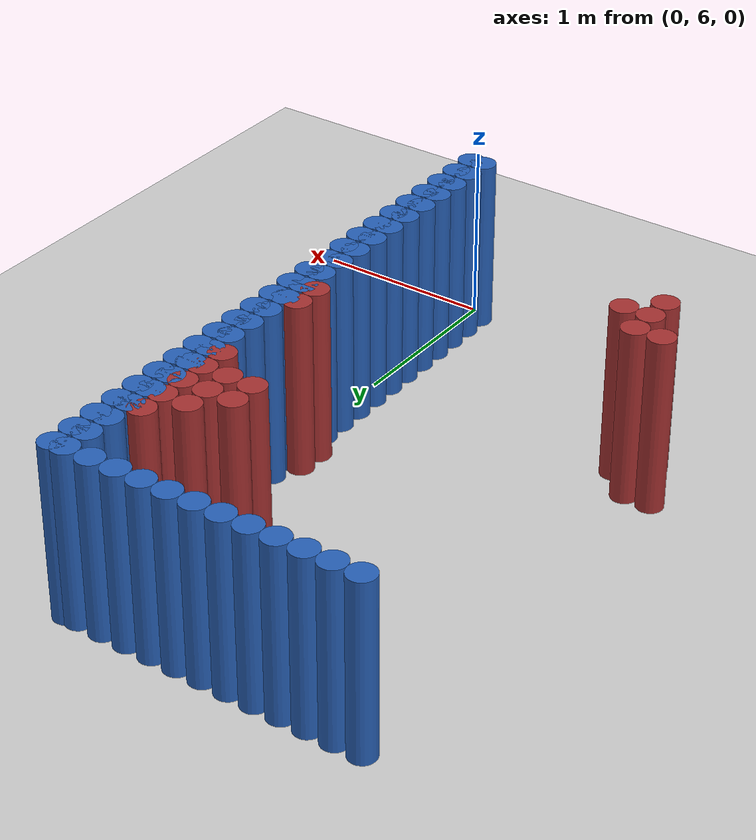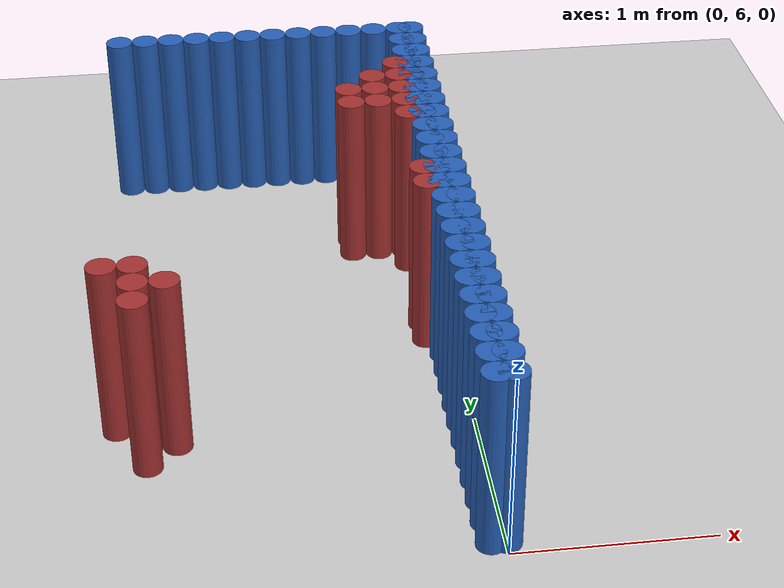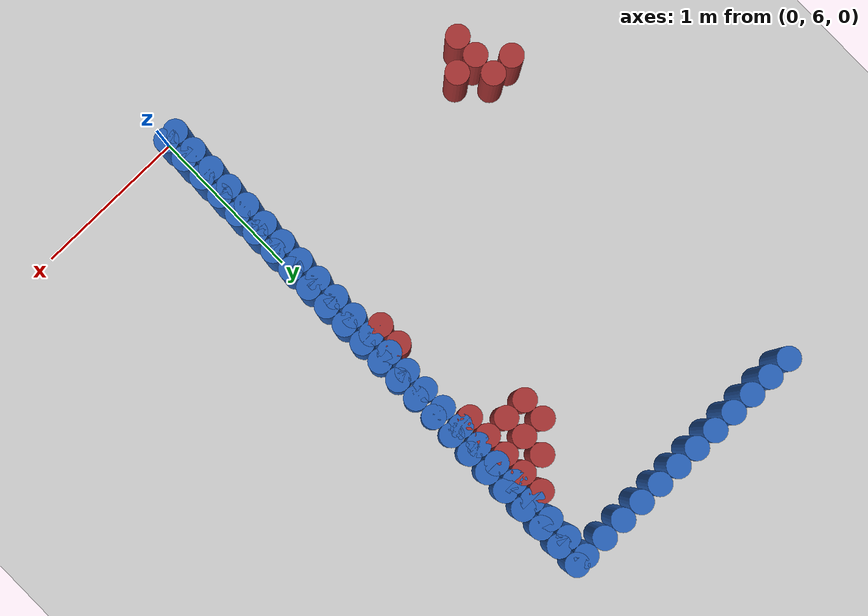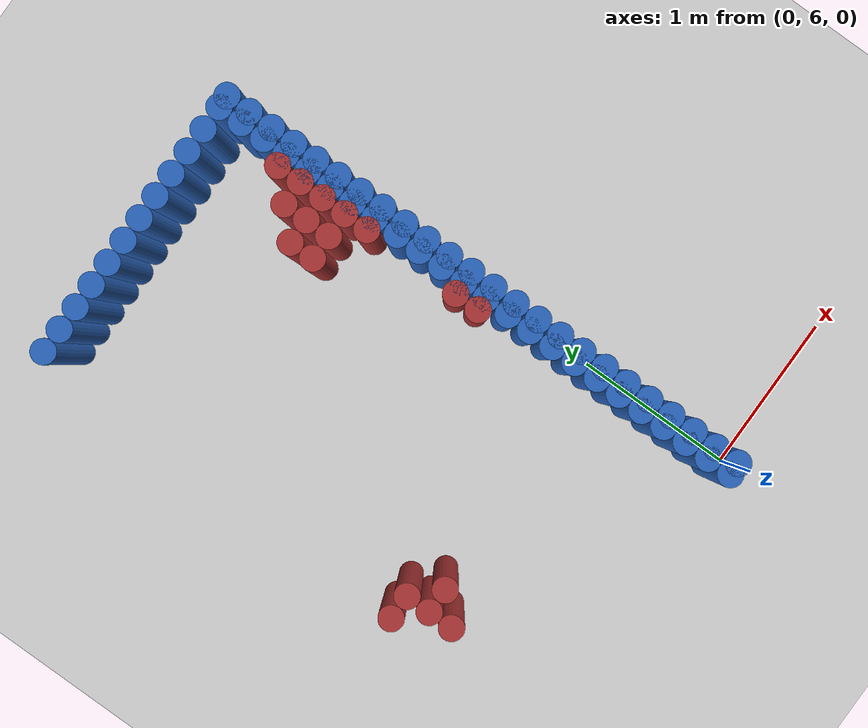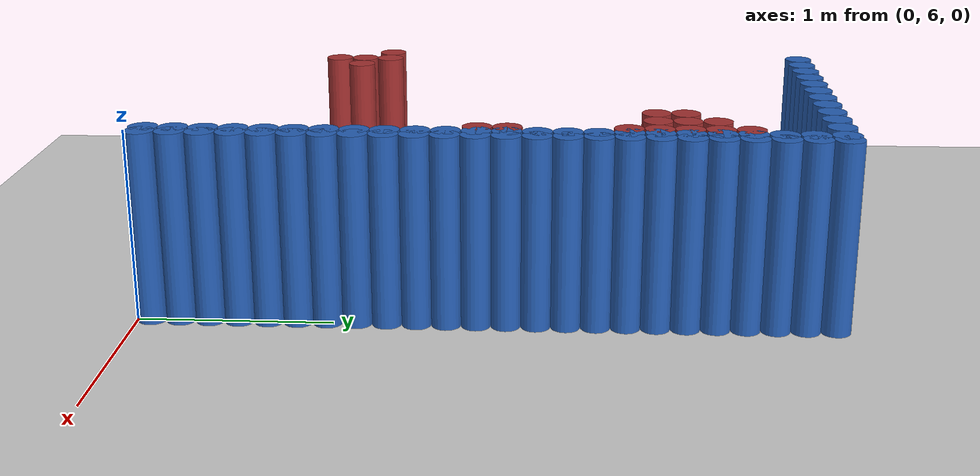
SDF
<sdf version="1.6">
 <world name="barn_world">
  <model name="ground_plane">
   <static>1</static>
   <link name="link">
    <collision name="collision">
     <geometry><plane><normal>0 0 1</normal><size>100 100</size></plane></geometry>
    </collision>
    <visual name="visual">
     <geometry><plane><normal>0 0 1</normal><size>100 100</size></plane></geometry>
     <material>
      <script><uri>file://media/materials/scripts/gazebo.material</uri><name>Gazebo/Grey</name></script>
     </material>
    </visual>
   </link>
  </model>
  <model name="unit_cylinder_168">
   <static>1</static>
   <pose>-1.8000 7.1250 0.5 0 0 0</pose>
   <link name="link">
    <collision name="collision">
     <geometry><cylinder><radius>0.075</radius><length>1</length></cylinder></geometry>
    </collision>
    <visual name="visual">
     <geometry><cylinder><radius>0.075</radius><length>1</length></cylinder></geometry>
     <material><ambient>0.648 0.192 0.192 1</ambient><diffuse>0.648 0.192 0.192 1</diffuse></material>
    </visual>
   </link>
  </model>
  <model name="unit_cylinder_169">
   <static>1</static>
   <pose>-1.6500 6.8250 0.5 0 0 0</pose>
   <link name="link">
    <collision name="collision">
     <geometry><cylinder><radius>0.075</radius><length>1</length></cylinder></geometry>
    </collision>
    <visual name="visual">
     <geometry><cylinder><radius>0.075</radius><length>1</length></cylinder></geometry>
     <material><ambient>0.648 0.192 0.192 1</ambient><diffuse>0.648 0.192 0.192 1</diffuse></material>
    </visual>
   </link>
  </model>
  <model name="unit_cylinder_170">
   <static>1</static>
   <pose>-1.6500 6.9750 0.5 0 0 0</pose>
   <link name="link">
    <collision name="collision">
     <geometry><cylinder><radius>0.075</radius><length>1</length></cylinder></geometry>
    </collision>
    <visual name="visual">
     <geometry><cylinder><radius>0.075</radius><length>1</length></cylinder></geometry>
     <material><ambient>0.648 0.192 0.192 1</ambient><diffuse>0.648 0.192 0.192 1</diffuse></material>
    </visual>
   </link>
  </model>
  <model name="unit_cylinder_171">
   <static>1</static>
   <pose>-1.6500 7.1250 0.5 0 0 0</pose>
   <link name="link">
    <collision name="collision">
     <geometry><cylinder><radius>0.075</radius><length>1</length></cylinder></geometry>
    </collision>
    <visual name="visual">
     <geometry><cylinder><radius>0.075</radius><length>1</length></cylinder></geometry>
     <material><ambient>0.648 0.192 0.192 1</ambient><diffuse>0.648 0.192 0.192 1</diffuse></material>
    </visual>
   </link>
  </model>
  <model name="unit_cylinder_172">
   <static>1</static>
   <pose>-1.5000 6.9750 0.5 0 0 0</pose>
   <link name="link">
    <collision name="collision">
     <geometry><cylinder><radius>0.075</radius><length>1</length></cylinder></geometry>
    </collision>
    <visual name="visual">
     <geometry><cylinder><radius>0.075</radius><length>1</length></cylinder></geometry>
     <material><ambient>0.648 0.192 0.192 1</ambient><diffuse>0.648 0.192 0.192 1</diffuse></material>
    </visual>
   </link>
  </model>
  <model name="unit_cylinder_173">
   <static>1</static>
   <pose>-0.4500 8.6250 0.5 0 0 0</pose>
   <link name="link">
    <collision name="collision">
     <geometry><cylinder><radius>0.075</radius><length>1</length></cylinder></geometry>
    </collision>
    <visual name="visual">
     <geometry><cylinder><radius>0.075</radius><length>1</length></cylinder></geometry>
     <material><ambient>0.648 0.192 0.192 1</ambient><diffuse>0.648 0.192 0.192 1</diffuse></material>
    </visual>
   </link>
  </model>
  <model name="unit_cylinder_174">
   <static>1</static>
   <pose>-0.4500 8.7750 0.5 0 0 0</pose>
   <link name="link">
    <collision name="collision">
     <geometry><cylinder><radius>0.075</radius><length>1</length></cylinder></geometry>
    </collision>
    <visual name="visual">
     <geometry><cylinder><radius>0.075</radius><length>1</length></cylinder></geometry>
     <material><ambient>0.648 0.192 0.192 1</ambient><diffuse>0.648 0.192 0.192 1</diffuse></material>
    </visual>
   </link>
  </model>
  <model name="unit_cylinder_175">
   <static>1</static>
   <pose>-0.3000 8.6250 0.5 0 0 0</pose>
   <link name="link">
    <collision name="collision">
     <geometry><cylinder><radius>0.075</radius><length>1</length></cylinder></geometry>
    </collision>
    <visual name="visual">
     <geometry><cylinder><radius>0.075</radius><length>1</length></cylinder></geometry>
     <material><ambient>0.648 0.192 0.192 1</ambient><diffuse>0.648 0.192 0.192 1</diffuse></material>
    </visual>
   </link>
  </model>
  <model name="unit_cylinder_176">
   <static>1</static>
   <pose>-0.3000 8.7750 0.5 0 0 0</pose>
   <link name="link">
    <collision name="collision">
     <geometry><cylinder><radius>0.075</radius><length>1</length></cylinder></geometry>
    </collision>
    <visual name="visual">
     <geometry><cylinder><radius>0.075</radius><length>1</length></cylinder></geometry>
     <material><ambient>0.648 0.192 0.192 1</ambient><diffuse>0.648 0.192 0.192 1</diffuse></material>
    </visual>
   </link>
  </model>
  <model name="unit_cylinder_177">
   <static>1</static>
   <pose>-0.3000 8.9250 0.5 0 0 0</pose>
   <link name="link">
    <collision name="collision">
     <geometry><cylinder><radius>0.075</radius><length>1</length></cylinder></geometry>
    </collision>
    <visual name="visual">
     <geometry><cylinder><radius>0.075</radius><length>1</length></cylinder></geometry>
     <material><ambient>0.648 0.192 0.192 1</ambient><diffuse>0.648 0.192 0.192 1</diffuse></material>
    </visual>
   </link>
  </model>
  <model name="unit_cylinder_181">
   <static>1</static>
   <pose>-0.1500 7.7250 0.5 0 0 0</pose>
   <link name="link">
    <collision name="collision">
     <geometry><cylinder><radius>0.075</radius><length>1</length></cylinder></geometry>
    </collision>
    <visual name="visual">
     <geometry><cylinder><radius>0.075</radius><length>1</length></cylinder></geometry>
     <material><ambient>0.648 0.192 0.192 1</ambient><diffuse>0.648 0.192 0.192 1</diffuse></material>
    </visual>
   </link>
  </model>
  <model name="unit_cylinder_182">
   <static>1</static>
   <pose>-0.1500 7.8750 0.5 0 0 0</pose>
   <link name="link">
    <collision name="collision">
     <geometry><cylinder><radius>0.075</radius><length>1</length></cylinder></geometry>
    </collision>
    <visual name="visual">
     <geometry><cylinder><radius>0.075</radius><length>1</length></cylinder></geometry>
     <material><ambient>0.648 0.192 0.192 1</ambient><diffuse>0.648 0.192 0.192 1</diffuse></material>
    </visual>
   </link>
  </model>
  <model name="unit_cylinder_183">
   <static>1</static>
   <pose>-0.1500 8.4750 0.5 0 0 0</pose>
   <link name="link">
    <collision name="collision">
     <geometry><cylinder><radius>0.075</radius><length>1</length></cylinder></geometry>
    </collision>
    <visual name="visual">
     <geometry><cylinder><radius>0.075</radius><length>1</length></cylinder></geometry>
     <material><ambient>0.648 0.192 0.192 1</ambient><diffuse>0.648 0.192 0.192 1</diffuse></material>
    </visual>
   </link>
  </model>
  <model name="unit_cylinder_184">
   <static>1</static>
   <pose>-0.1500 8.6250 0.5 0 0 0</pose>
   <link name="link">
    <collision name="collision">
     <geometry><cylinder><radius>0.075</radius><length>1</length></cylinder></geometry>
    </collision>
    <visual name="visual">
     <geometry><cylinder><radius>0.075</radius><length>1</length></cylinder></geometry>
     <material><ambient>0.648 0.192 0.192 1</ambient><diffuse>0.648 0.192 0.192 1</diffuse></material>
    </visual>
   </link>
  </model>
  <model name="unit_cylinder_185">
   <static>1</static>
   <pose>-0.1500 8.7750 0.5 0 0 0</pose>
   <link name="link">
    <collision name="collision">
     <geometry><cylinder><radius>0.075</radius><length>1</length></cylinder></geometry>
    </collision>
    <visual name="visual">
     <geometry><cylinder><radius>0.075</radius><length>1</length></cylinder></geometry>
     <material><ambient>0.648 0.192 0.192 1</ambient><diffuse>0.648 0.192 0.192 1</diffuse></material>
    </visual>
   </link>
  </model>
  <model name="unit_cylinder_186">
   <static>1</static>
   <pose>-0.1500 8.9250 0.5 0 0 0</pose>
   <link name="link">
    <collision name="collision">
     <geometry><cylinder><radius>0.075</radius><length>1</length></cylinder></geometry>
    </collision>
    <visual name="visual">
     <geometry><cylinder><radius>0.075</radius><length>1</length></cylinder></geometry>
     <material><ambient>0.648 0.192 0.192 1</ambient><diffuse>0.648 0.192 0.192 1</diffuse></material>
    </visual>
   </link>
  </model>
  <model name="unit_cylinder_187">
   <static>1</static>
   <pose>-0.1500 9.0750 0.5 0 0 0</pose>
   <link name="link">
    <collision name="collision">
     <geometry><cylinder><radius>0.075</radius><length>1</length></cylinder></geometry>
    </collision>
    <visual name="visual">
     <geometry><cylinder><radius>0.075</radius><length>1</length></cylinder></geometry>
     <material><ambient>0.648 0.192 0.192 1</ambient><diffuse>0.648 0.192 0.192 1</diffuse></material>
    </visual>
   </link>
  </model>
  <model name="unit_cylinder_194">
   <static>1</static>
   <pose>0.0000 6.0750 0.5 0 0 0</pose>
   <link name="link">
    <collision name="collision">
     <geometry><cylinder><radius>0.075</radius><length>1</length></cylinder></geometry>
    </collision>
    <visual name="visual">
     <geometry><cylinder><radius>0.075</radius><length>1</length></cylinder></geometry>
     <material><ambient>0.152 0.379 0.72 1</ambient><diffuse>0.152 0.379 0.72 1</diffuse></material>
    </visual>
   </link>
  </model>
  <model name="unit_cylinder_195">
   <static>1</static>
   <pose>0.0000 6.2250 0.5 0 0 0</pose>
   <link name="link">
    <collision name="collision">
     <geometry><cylinder><radius>0.075</radius><length>1</length></cylinder></geometry>
    </collision>
    <visual name="visual">
     <geometry><cylinder><radius>0.075</radius><length>1</length></cylinder></geometry>
     <material><ambient>0.152 0.379 0.72 1</ambient><diffuse>0.152 0.379 0.72 1</diffuse></material>
    </visual>
   </link>
  </model>
  <model name="unit_cylinder_196">
   <static>1</static>
   <pose>0.0000 6.3750 0.5 0 0 0</pose>
   <link name="link">
    <collision name="collision">
     <geometry><cylinder><radius>0.075</radius><length>1</length></cylinder></geometry>
    </collision>
    <visual name="visual">
     <geometry><cylinder><radius>0.075</radius><length>1</length></cylinder></geometry>
     <material><ambient>0.152 0.379 0.72 1</ambient><diffuse>0.152 0.379 0.72 1</diffuse></material>
    </visual>
   </link>
  </model>
  <model name="unit_cylinder_197">
   <static>1</static>
   <pose>0.0000 6.5250 0.5 0 0 0</pose>
   <link name="link">
    <collision name="collision">
     <geometry><cylinder><radius>0.075</radius><length>1</length></cylinder></geometry>
    </collision>
    <visual name="visual">
     <geometry><cylinder><radius>0.075</radius><length>1</length></cylinder></geometry>
     <material><ambient>0.152 0.379 0.72 1</ambient><diffuse>0.152 0.379 0.72 1</diffuse></material>
    </visual>
   </link>
  </model>
  <model name="unit_cylinder_198">
   <static>1</static>
   <pose>0.0000 6.6750 0.5 0 0 0</pose>
   <link name="link">
    <collision name="collision">
     <geometry><cylinder><radius>0.075</radius><length>1</length></cylinder></geometry>
    </collision>
    <visual name="visual">
     <geometry><cylinder><radius>0.075</radius><length>1</length></cylinder></geometry>
     <material><ambient>0.152 0.379 0.72 1</ambient><diffuse>0.152 0.379 0.72 1</diffuse></material>
    </visual>
   </link>
  </model>
  <model name="unit_cylinder_199">
   <static>1</static>
   <pose>0.0000 6.8250 0.5 0 0 0</pose>
   <link name="link">
    <collision name="collision">
     <geometry><cylinder><radius>0.075</radius><length>1</length></cylinder></geometry>
    </collision>
    <visual name="visual">
     <geometry><cylinder><radius>0.075</radius><length>1</length></cylinder></geometry>
     <material><ambient>0.152 0.379 0.72 1</ambient><diffuse>0.152 0.379 0.72 1</diffuse></material>
    </visual>
   </link>
  </model>
  <model name="unit_cylinder_200">
   <static>1</static>
   <pose>0.0000 6.9750 0.5 0 0 0</pose>
   <link name="link">
    <collision name="collision">
     <geometry><cylinder><radius>0.075</radius><length>1</length></cylinder></geometry>
    </collision>
    <visual name="visual">
     <geometry><cylinder><radius>0.075</radius><length>1</length></cylinder></geometry>
     <material><ambient>0.152 0.379 0.72 1</ambient><diffuse>0.152 0.379 0.72 1</diffuse></material>
    </visual>
   </link>
  </model>
  <model name="unit_cylinder_201">
   <static>1</static>
   <pose>0.0000 7.1250 0.5 0 0 0</pose>
   <link name="link">
    <collision name="collision">
     <geometry><cylinder><radius>0.075</radius><length>1</length></cylinder></geometry>
    </collision>
    <visual name="visual">
     <geometry><cylinder><radius>0.075</radius><length>1</length></cylinder></geometry>
     <material><ambient>0.152 0.379 0.72 1</ambient><diffuse>0.152 0.379 0.72 1</diffuse></material>
    </visual>
   </link>
  </model>
  <model name="unit_cylinder_202">
   <static>1</static>
   <pose>0.0000 7.2750 0.5 0 0 0</pose>
   <link name="link">
    <collision name="collision">
     <geometry><cylinder><radius>0.075</radius><length>1</length></cylinder></geometry>
    </collision>
    <visual name="visual">
     <geometry><cylinder><radius>0.075</radius><length>1</length></cylinder></geometry>
     <material><ambient>0.152 0.379 0.72 1</ambient><diffuse>0.152 0.379 0.72 1</diffuse></material>
    </visual>
   </link>
  </model>
  <model name="unit_cylinder_203">
   <static>1</static>
   <pose>0.0000 7.4250 0.5 0 0 0</pose>
   <link name="link">
    <collision name="collision">
     <geometry><cylinder><radius>0.075</radius><length>1</length></cylinder></geometry>
    </collision>
    <visual name="visual">
     <geometry><cylinder><radius>0.075</radius><length>1</length></cylinder></geometry>
     <material><ambient>0.152 0.379 0.72 1</ambient><diffuse>0.152 0.379 0.72 1</diffuse></material>
    </visual>
   </link>
  </model>
  <model name="unit_cylinder_204">
   <static>1</static>
   <pose>0.0000 7.5750 0.5 0 0 0</pose>
   <link name="link">
    <collision name="collision">
     <geometry><cylinder><radius>0.075</radius><length>1</length></cylinder></geometry>
    </collision>
    <visual name="visual">
     <geometry><cylinder><radius>0.075</radius><length>1</length></cylinder></geometry>
     <material><ambient>0.152 0.379 0.72 1</ambient><diffuse>0.152 0.379 0.72 1</diffuse></material>
    </visual>
   </link>
  </model>
  <model name="unit_cylinder_205">
   <static>1</static>
   <pose>0.0000 7.7250 0.5 0 0 0</pose>
   <link name="link">
    <collision name="collision">
     <geometry><cylinder><radius>0.075</radius><length>1</length></cylinder></geometry>
    </collision>
    <visual name="visual">
     <geometry><cylinder><radius>0.075</radius><length>1</length></cylinder></geometry>
     <material><ambient>0.152 0.379 0.72 1</ambient><diffuse>0.152 0.379 0.72 1</diffuse></material>
    </visual>
   </link>
  </model>
  <model name="unit_cylinder_206">
   <static>1</static>
   <pose>0.0000 7.8750 0.5 0 0 0</pose>
   <link name="link">
    <collision name="collision">
     <geometry><cylinder><radius>0.075</radius><length>1</length></cylinder></geometry>
    </collision>
    <visual name="visual">
     <geometry><cylinder><radius>0.075</radius><length>1</length></cylinder></geometry>
     <material><ambient>0.152 0.379 0.72 1</ambient><diffuse>0.152 0.379 0.72 1</diffuse></material>
    </visual>
   </link>
  </model>
  <model name="unit_cylinder_207">
   <static>1</static>
   <pose>0.0000 8.0250 0.5 0 0 0</pose>
   <link name="link">
    <collision name="collision">
     <geometry><cylinder><radius>0.075</radius><length>1</length></cylinder></geometry>
    </collision>
    <visual name="visual">
     <geometry><cylinder><radius>0.075</radius><length>1</length></cylinder></geometry>
     <material><ambient>0.152 0.379 0.72 1</ambient><diffuse>0.152 0.379 0.72 1</diffuse></material>
    </visual>
   </link>
  </model>
  <model name="unit_cylinder_208">
   <static>1</static>
   <pose>0.0000 8.1750 0.5 0 0 0</pose>
   <link name="link">
    <collision name="collision">
     <geometry><cylinder><radius>0.075</radius><length>1</length></cylinder></geometry>
    </collision>
    <visual name="visual">
     <geometry><cylinder><radius>0.075</radius><length>1</length></cylinder></geometry>
     <material><ambient>0.152 0.379 0.72 1</ambient><diffuse>0.152 0.379 0.72 1</diffuse></material>
    </visual>
   </link>
  </model>
  <model name="unit_cylinder_209">
   <static>1</static>
   <pose>0.0000 8.3250 0.5 0 0 0</pose>
   <link name="link">
    <collision name="collision">
     <geometry><cylinder><radius>0.075</radius><length>1</length></cylinder></geometry>
    </collision>
    <visual name="visual">
     <geometry><cylinder><radius>0.075</radius><length>1</length></cylinder></geometry>
     <material><ambient>0.152 0.379 0.72 1</ambient><diffuse>0.152 0.379 0.72 1</diffuse></material>
    </visual>
   </link>
  </model>
  <model name="unit_cylinder_210">
   <static>1</static>
   <pose>0.0000 8.4750 0.5 0 0 0</pose>
   <link name="link">
    <collision name="collision">
     <geometry><cylinder><radius>0.075</radius><length>1</length></cylinder></geometry>
    </collision>
    <visual name="visual">
     <geometry><cylinder><radius>0.075</radius><length>1</length></cylinder></geometry>
     <material><ambient>0.152 0.379 0.72 1</ambient><diffuse>0.152 0.379 0.72 1</diffuse></material>
    </visual>
   </link>
  </model>
  <model name="unit_cylinder_211">
   <static>1</static>
   <pose>0.0000 8.6250 0.5 0 0 0</pose>
   <link name="link">
    <collision name="collision">
     <geometry><cylinder><radius>0.075</radius><length>1</length></cylinder></geometry>
    </collision>
    <visual name="visual">
     <geometry><cylinder><radius>0.075</radius><length>1</length></cylinder></geometry>
     <material><ambient>0.152 0.379 0.72 1</ambient><diffuse>0.152 0.379 0.72 1</diffuse></material>
    </visual>
   </link>
  </model>
  <model name="unit_cylinder_212">
   <static>1</static>
   <pose>0.0000 8.7750 0.5 0 0 0</pose>
   <link name="link">
    <collision name="collision">
     <geometry><cylinder><radius>0.075</radius><length>1</length></cylinder></geometry>
    </collision>
    <visual name="visual">
     <geometry><cylinder><radius>0.075</radius><length>1</length></cylinder></geometry>
     <material><ambient>0.152 0.379 0.72 1</ambient><diffuse>0.152 0.379 0.72 1</diffuse></material>
    </visual>
   </link>
  </model>
  <model name="unit_cylinder_213">
   <static>1</static>
   <pose>0.0000 8.9250 0.5 0 0 0</pose>
   <link name="link">
    <collision name="collision">
     <geometry><cylinder><radius>0.075</radius><length>1</length></cylinder></geometry>
    </collision>
    <visual name="visual">
     <geometry><cylinder><radius>0.075</radius><length>1</length></cylinder></geometry>
     <material><ambient>0.152 0.379 0.72 1</ambient><diffuse>0.152 0.379 0.72 1</diffuse></material>
    </visual>
   </link>
  </model>
  <model name="unit_cylinder_214">
   <static>1</static>
   <pose>0.0000 9.0750 0.5 0 0 0</pose>
   <link name="link">
    <collision name="collision">
     <geometry><cylinder><radius>0.075</radius><length>1</length></cylinder></geometry>
    </collision>
    <visual name="visual">
     <geometry><cylinder><radius>0.075</radius><length>1</length></cylinder></geometry>
     <material><ambient>0.152 0.379 0.72 1</ambient><diffuse>0.152 0.379 0.72 1</diffuse></material>
    </visual>
   </link>
  </model>
  <model name="unit_cylinder_215">
   <static>1</static>
   <pose>0.0000 9.2250 0.5 0 0 0</pose>
   <link name="link">
    <collision name="collision">
     <geometry><cylinder><radius>0.075</radius><length>1</length></cylinder></geometry>
    </collision>
    <visual name="visual">
     <geometry><cylinder><radius>0.075</radius><length>1</length></cylinder></geometry>
     <material><ambient>0.152 0.379 0.72 1</ambient><diffuse>0.152 0.379 0.72 1</diffuse></material>
    </visual>
   </link>
  </model>
  <model name="unit_cylinder_216">
   <static>1</static>
   <pose>0.0000 9.3750 0.5 0 0 0</pose>
   <link name="link">
    <collision name="collision">
     <geometry><cylinder><radius>0.075</radius><length>1</length></cylinder></geometry>
    </collision>
    <visual name="visual">
     <geometry><cylinder><radius>0.075</radius><length>1</length></cylinder></geometry>
     <material><ambient>0.152 0.379 0.72 1</ambient><diffuse>0.152 0.379 0.72 1</diffuse></material>
    </visual>
   </link>
  </model>
  <model name="unit_cylinder_217">
   <static>1</static>
   <pose>0.0000 9.5250 0.5 0 0 0</pose>
   <link name="link">
    <collision name="collision">
     <geometry><cylinder><radius>0.075</radius><length>1</length></cylinder></geometry>
    </collision>
    <visual name="visual">
     <geometry><cylinder><radius>0.075</radius><length>1</length></cylinder></geometry>
     <material><ambient>0.152 0.379 0.72 1</ambient><diffuse>0.152 0.379 0.72 1</diffuse></material>
    </visual>
   </link>
  </model>
  <model name="unit_cylinder_218">
   <static>1</static>
   <pose>-0.0750 9.5250 0.5 0 0 0</pose>
   <link name="link">
    <collision name="collision">
     <geometry><cylinder><radius>0.075</radius><length>1</length></cylinder></geometry>
    </collision>
    <visual name="visual">
     <geometry><cylinder><radius>0.075</radius><length>1</length></cylinder></geometry>
     <material><ambient>0.152 0.379 0.72 1</ambient><diffuse>0.152 0.379 0.72 1</diffuse></material>
    </visual>
   </link>
  </model>
  <model name="unit_cylinder_219">
   <static>1</static>
   <pose>-0.2250 9.5250 0.5 0 0 0</pose>
   <link name="link">
    <collision name="collision">
     <geometry><cylinder><radius>0.075</radius><length>1</length></cylinder></geometry>
    </collision>
    <visual name="visual">
     <geometry><cylinder><radius>0.075</radius><length>1</length></cylinder></geometry>
     <material><ambient>0.152 0.379 0.72 1</ambient><diffuse>0.152 0.379 0.72 1</diffuse></material>
    </visual>
   </link>
  </model>
  <model name="unit_cylinder_220">
   <static>1</static>
   <pose>-0.3750 9.5250 0.5 0 0 0</pose>
   <link name="link">
    <collision name="collision">
     <geometry><cylinder><radius>0.075</radius><length>1</length></cylinder></geometry>
    </collision>
    <visual name="visual">
     <geometry><cylinder><radius>0.075</radius><length>1</length></cylinder></geometry>
     <material><ambient>0.152 0.379 0.72 1</ambient><diffuse>0.152 0.379 0.72 1</diffuse></material>
    </visual>
   </link>
  </model>
  <model name="unit_cylinder_221">
   <static>1</static>
   <pose>-0.5250 9.5250 0.5 0 0 0</pose>
   <link name="link">
    <collision name="collision">
     <geometry><cylinder><radius>0.075</radius><length>1</length></cylinder></geometry>
    </collision>
    <visual name="visual">
     <geometry><cylinder><radius>0.075</radius><length>1</length></cylinder></geometry>
     <material><ambient>0.152 0.379 0.72 1</ambient><diffuse>0.152 0.379 0.72 1</diffuse></material>
    </visual>
   </link>
  </model>
  <model name="unit_cylinder_222">
   <static>1</static>
   <pose>-0.6750 9.5250 0.5 0 0 0</pose>
   <link name="link">
    <collision name="collision">
     <geometry><cylinder><radius>0.075</radius><length>1</length></cylinder></geometry>
    </collision>
    <visual name="visual">
     <geometry><cylinder><radius>0.075</radius><length>1</length></cylinder></geometry>
     <material><ambient>0.152 0.379 0.72 1</ambient><diffuse>0.152 0.379 0.72 1</diffuse></material>
    </visual>
   </link>
  </model>
  <model name="unit_cylinder_223">
   <static>1</static>
   <pose>-0.8250 9.5250 0.5 0 0 0</pose>
   <link name="link">
    <collision name="collision">
     <geometry><cylinder><radius>0.075</radius><length>1</length></cylinder></geometry>
    </collision>
    <visual name="visual">
     <geometry><cylinder><radius>0.075</radius><length>1</length></cylinder></geometry>
     <material><ambient>0.152 0.379 0.72 1</ambient><diffuse>0.152 0.379 0.72 1</diffuse></material>
    </visual>
   </link>
  </model>
  <model name="unit_cylinder_224">
   <static>1</static>
   <pose>-0.9750 9.5250 0.5 0 0 0</pose>
   <link name="link">
    <collision name="collision">
     <geometry><cylinder><radius>0.075</radius><length>1</length></cylinder></geometry>
    </collision>
    <visual name="visual">
     <geometry><cylinder><radius>0.075</radius><length>1</length></cylinder></geometry>
     <material><ambient>0.152 0.379 0.72 1</ambient><diffuse>0.152 0.379 0.72 1</diffuse></material>
    </visual>
   </link>
  </model>
  <model name="unit_cylinder_225">
   <static>1</static>
   <pose>-1.1250 9.5250 0.5 0 0 0</pose>
   <link name="link">
    <collision name="collision">
     <geometry><cylinder><radius>0.075</radius><length>1</length></cylinder></geometry>
    </collision>
    <visual name="visual">
     <geometry><cylinder><radius>0.075</radius><length>1</length></cylinder></geometry>
     <material><ambient>0.152 0.379 0.72 1</ambient><diffuse>0.152 0.379 0.72 1</diffuse></material>
    </visual>
   </link>
  </model>
  <model name="unit_cylinder_226">
   <static>1</static>
   <pose>-1.2750 9.5250 0.5 0 0 0</pose>
   <link name="link">
    <collision name="collision">
     <geometry><cylinder><radius>0.075</radius><length>1</length></cylinder></geometry>
    </collision>
    <visual name="visual">
     <geometry><cylinder><radius>0.075</radius><length>1</length></cylinder></geometry>
     <material><ambient>0.152 0.379 0.72 1</ambient><diffuse>0.152 0.379 0.72 1</diffuse></material>
    </visual>
   </link>
  </model>
  <model name="unit_cylinder_227">
   <static>1</static>
   <pose>-1.4250 9.5250 0.5 0 0 0</pose>
   <link name="link">
    <collision name="collision">
     <geometry><cylinder><radius>0.075</radius><length>1</length></cylinder></geometry>
    </collision>
    <visual name="visual">
     <geometry><cylinder><radius>0.075</radius><length>1</length></cylinder></geometry>
     <material><ambient>0.152 0.379 0.72 1</ambient><diffuse>0.152 0.379 0.72 1</diffuse></material>
    </visual>
   </link>
  </model>
  <model name="unit_cylinder_228">
   <static>1</static>
   <pose>-1.5750 9.5250 0.5 0 0 0</pose>
   <link name="link">
    <collision name="collision">
     <geometry><cylinder><radius>0.075</radius><length>1</length></cylinder></geometry>
    </collision>
    <visual name="visual">
     <geometry><cylinder><radius>0.075</radius><length>1</length></cylinder></geometry>
     <material><ambient>0.152 0.379 0.72 1</ambient><diffuse>0.152 0.379 0.72 1</diffuse></material>
    </visual>
   </link>
  </model>
  <model name="unit_cylinder_229">
   <static>1</static>
   <pose>-1.7250 9.5250 0.5 0 0 0</pose>
   <link name="link">
    <collision name="collision">
     <geometry><cylinder><radius>0.075</radius><length>1</length></cylinder></geometry>
    </collision>
    <visual name="visual">
     <geometry><cylinder><radius>0.075</radius><length>1</length></cylinder></geometry>
     <material><ambient>0.152 0.379 0.72 1</ambient><diffuse>0.152 0.379 0.72 1</diffuse></material>
    </visual>
   </link>
  </model>
  <model name="unit_cylinder_260">
   <static>1</static>
   <pose>-0.0750 6.0750 0.5 0 0 0</pose>
   <link name="link">
    <collision name="collision">
     <geometry><cylinder><radius>0.075</radius><length>1</length></cylinder></geometry>
    </collision>
    <visual name="visual">
     <geometry><cylinder><radius>0.075</radius><length>1</length></cylinder></geometry>
     <material><ambient>0.152 0.379 0.72 1</ambient><diffuse>0.152 0.379 0.72 1</diffuse></material>
    </visual>
   </link>
  </model>
  <model name="unit_cylinder_262">
   <static>1</static>
   <pose>-0.0750 6.2250 0.5 0 0 0</pose>
   <link name="link">
    <collision name="collision">
     <geometry><cylinder><radius>0.075</radius><length>1</length></cylinder></geometry>
    </collision>
    <visual name="visual">
     <geometry><cylinder><radius>0.075</radius><length>1</length></cylinder></geometry>
     <material><ambient>0.152 0.379 0.72 1</ambient><diffuse>0.152 0.379 0.72 1</diffuse></material>
    </visual>
   </link>
  </model>
  <model name="unit_cylinder_264">
   <static>1</static>
   <pose>-0.0750 6.3750 0.5 0 0 0</pose>
   <link name="link">
    <collision name="collision">
     <geometry><cylinder><radius>0.075</radius><length>1</length></cylinder></geometry>
    </collision>
    <visual name="visual">
     <geometry><cylinder><radius>0.075</radius><length>1</length></cylinder></geometry>
     <material><ambient>0.152 0.379 0.72 1</ambient><diffuse>0.152 0.379 0.72 1</diffuse></material>
    </visual>
   </link>
  </model>
  <model name="unit_cylinder_266">
   <static>1</static>
   <pose>-0.0750 6.5250 0.5 0 0 0</pose>
   <link name="link">
    <collision name="collision">
     <geometry><cylinder><radius>0.075</radius><length>1</length></cylinder></geometry>
    </collision>
    <visual name="visual">
     <geometry><cylinder><radius>0.075</radius><length>1</length></cylinder></geometry>
     <material><ambient>0.152 0.379 0.72 1</ambient><diffuse>0.152 0.379 0.72 1</diffuse></material>
    </visual>
   </link>
  </model>
  <model name="unit_cylinder_268">
   <static>1</static>
   <pose>-0.0750 6.6750 0.5 0 0 0</pose>
   <link name="link">
    <collision name="collision">
     <geometry><cylinder><radius>0.075</radius><length>1</length></cylinder></geometry>
    </collision>
    <visual name="visual">
     <geometry><cylinder><radius>0.075</radius><length>1</length></cylinder></geometry>
     <material><ambient>0.152 0.379 0.72 1</ambient><diffuse>0.152 0.379 0.72 1</diffuse></material>
    </visual>
   </link>
  </model>
  <model name="unit_cylinder_270">
   <static>1</static>
   <pose>-0.0750 6.8250 0.5 0 0 0</pose>
   <link name="link">
    <collision name="collision">
     <geometry><cylinder><radius>0.075</radius><length>1</length></cylinder></geometry>
    </collision>
    <visual name="visual">
     <geometry><cylinder><radius>0.075</radius><length>1</length></cylinder></geometry>
     <material><ambient>0.152 0.379 0.72 1</ambient><diffuse>0.152 0.379 0.72 1</diffuse></material>
    </visual>
   </link>
  </model>
  <model name="unit_cylinder_272">
   <static>1</static>
   <pose>-0.0750 6.9750 0.5 0 0 0</pose>
   <link name="link">
    <collision name="collision">
     <geometry><cylinder><radius>0.075</radius><length>1</length></cylinder></geometry>
    </collision>
    <visual name="visual">
     <geometry><cylinder><radius>0.075</radius><length>1</length></cylinder></geometry>
     <material><ambient>0.152 0.379 0.72 1</ambient><diffuse>0.152 0.379 0.72 1</diffuse></material>
    </visual>
   </link>
  </model>
  <model name="unit_cylinder_274">
   <static>1</static>
   <pose>-0.0750 7.1250 0.5 0 0 0</pose>
   <link name="link">
    <collision name="collision">
     <geometry><cylinder><radius>0.075</radius><length>1</length></cylinder></geometry>
    </collision>
    <visual name="visual">
     <geometry><cylinder><radius>0.075</radius><length>1</length></cylinder></geometry>
     <material><ambient>0.152 0.379 0.72 1</ambient><diffuse>0.152 0.379 0.72 1</diffuse></material>
    </visual>
   </link>
  </model>
  <model name="unit_cylinder_276">
   <static>1</static>
   <pose>-0.0750 7.2750 0.5 0 0 0</pose>
   <link name="link">
    <collision name="collision">
     <geometry><cylinder><radius>0.075</radius><length>1</length></cylinder></geometry>
    </collision>
    <visual name="visual">
     <geometry><cylinder><radius>0.075</radius><length>1</length></cylinder></geometry>
     <material><ambient>0.152 0.379 0.72 1</ambient><diffuse>0.152 0.379 0.72 1</diffuse></material>
    </visual>
   </link>
  </model>
  <model name="unit_cylinder_278">
   <static>1</static>
   <pose>-0.0750 7.4250 0.5 0 0 0</pose>
   <link name="link">
    <collision name="collision">
     <geometry><cylinder><radius>0.075</radius><length>1</length></cylinder></geometry>
    </collision>
    <visual name="visual">
     <geometry><cylinder><radius>0.075</radius><length>1</length></cylinder></geometry>
     <material><ambient>0.152 0.379 0.72 1</ambient><diffuse>0.152 0.379 0.72 1</diffuse></material>
    </visual>
   </link>
  </model>
  <model name="unit_cylinder_280">
   <static>1</static>
   <pose>-0.0750 7.5750 0.5 0 0 0</pose>
   <link name="link">
    <collision name="collision">
     <geometry><cylinder><radius>0.075</radius><length>1</length></cylinder></geometry>
    </collision>
    <visual name="visual">
     <geometry><cylinder><radius>0.075</radius><length>1</length></cylinder></geometry>
     <material><ambient>0.152 0.379 0.72 1</ambient><diffuse>0.152 0.379 0.72 1</diffuse></material>
    </visual>
   </link>
  </model>
  <model name="unit_cylinder_282">
   <static>1</static>
   <pose>-0.0750 7.7250 0.5 0 0 0</pose>
   <link name="link">
    <collision name="collision">
     <geometry><cylinder><radius>0.075</radius><length>1</length></cylinder></geometry>
    </collision>
    <visual name="visual">
     <geometry><cylinder><radius>0.075</radius><length>1</length></cylinder></geometry>
     <material><ambient>0.152 0.379 0.72 1</ambient><diffuse>0.152 0.379 0.72 1</diffuse></material>
    </visual>
   </link>
  </model>
  <model name="unit_cylinder_284">
   <static>1</static>
   <pose>-0.0750 7.8750 0.5 0 0 0</pose>
   <link name="link">
    <collision name="collision">
     <geometry><cylinder><radius>0.075</radius><length>1</length></cylinder></geometry>
    </collision>
    <visual name="visual">
     <geometry><cylinder><radius>0.075</radius><length>1</length></cylinder></geometry>
     <material><ambient>0.152 0.379 0.72 1</ambient><diffuse>0.152 0.379 0.72 1</diffuse></material>
    </visual>
   </link>
  </model>
  <model name="unit_cylinder_286">
   <static>1</static>
   <pose>-0.0750 8.0250 0.5 0 0 0</pose>
   <link name="link">
    <collision name="collision">
     <geometry><cylinder><radius>0.075</radius><length>1</length></cylinder></geometry>
    </collision>
    <visual name="visual">
     <geometry><cylinder><radius>0.075</radius><length>1</length></cylinder></geometry>
     <material><ambient>0.152 0.379 0.72 1</ambient><diffuse>0.152 0.379 0.72 1</diffuse></material>
    </visual>
   </link>
  </model>
  <model name="unit_cylinder_288">
   <static>1</static>
   <pose>-0.0750 8.1750 0.5 0 0 0</pose>
   <link name="link">
    <collision name="collision">
     <geometry><cylinder><radius>0.075</radius><length>1</length></cylinder></geometry>
    </collision>
    <visual name="visual">
     <geometry><cylinder><radius>0.075</radius><length>1</length></cylinder></geometry>
     <material><ambient>0.152 0.379 0.72 1</ambient><diffuse>0.152 0.379 0.72 1</diffuse></material>
    </visual>
   </link>
  </model>
  <model name="unit_cylinder_290">
   <static>1</static>
   <pose>-0.0750 8.3250 0.5 0 0 0</pose>
   <link name="link">
    <collision name="collision">
     <geometry><cylinder><radius>0.075</radius><length>1</length></cylinder></geometry>
    </collision>
    <visual name="visual">
     <geometry><cylinder><radius>0.075</radius><length>1</length></cylinder></geometry>
     <material><ambient>0.152 0.379 0.72 1</ambient><diffuse>0.152 0.379 0.72 1</diffuse></material>
    </visual>
   </link>
  </model>
  <model name="unit_cylinder_292">
   <static>1</static>
   <pose>-0.0750 8.4750 0.5 0 0 0</pose>
   <link name="link">
    <collision name="collision">
     <geometry><cylinder><radius>0.075</radius><length>1</length></cylinder></geometry>
    </collision>
    <visual name="visual">
     <geometry><cylinder><radius>0.075</radius><length>1</length></cylinder></geometry>
     <material><ambient>0.152 0.379 0.72 1</ambient><diffuse>0.152 0.379 0.72 1</diffuse></material>
    </visual>
   </link>
  </model>
  <model name="unit_cylinder_294">
   <static>1</static>
   <pose>-0.0750 8.6250 0.5 0 0 0</pose>
   <link name="link">
    <collision name="collision">
     <geometry><cylinder><radius>0.075</radius><length>1</length></cylinder></geometry>
    </collision>
    <visual name="visual">
     <geometry><cylinder><radius>0.075</radius><length>1</length></cylinder></geometry>
     <material><ambient>0.152 0.379 0.72 1</ambient><diffuse>0.152 0.379 0.72 1</diffuse></material>
    </visual>
   </link>
  </model>
  <model name="unit_cylinder_296">
   <static>1</static>
   <pose>-0.0750 8.7750 0.5 0 0 0</pose>
   <link name="link">
    <collision name="collision">
     <geometry><cylinder><radius>0.075</radius><length>1</length></cylinder></geometry>
    </collision>
    <visual name="visual">
     <geometry><cylinder><radius>0.075</radius><length>1</length></cylinder></geometry>
     <material><ambient>0.152 0.379 0.72 1</ambient><diffuse>0.152 0.379 0.72 1</diffuse></material>
    </visual>
   </link>
  </model>
  <model name="unit_cylinder_298">
   <static>1</static>
   <pose>-0.0750 8.9250 0.5 0 0 0</pose>
   <link name="link">
    <collision name="collision">
     <geometry><cylinder><radius>0.075</radius><length>1</length></cylinder></geometry>
    </collision>
    <visual name="visual">
     <geometry><cylinder><radius>0.075</radius><length>1</length></cylinder></geometry>
     <material><ambient>0.152 0.379 0.72 1</ambient><diffuse>0.152 0.379 0.72 1</diffuse></material>
    </visual>
   </link>
  </model>
  <model name="unit_cylinder_300">
   <static>1</static>
   <pose>-0.0750 9.0750 0.5 0 0 0</pose>
   <link name="link">
    <collision name="collision">
     <geometry><cylinder><radius>0.075</radius><length>1</length></cylinder></geometry>
    </collision>
    <visual name="visual">
     <geometry><cylinder><radius>0.075</radius><length>1</length></cylinder></geometry>
     <material><ambient>0.152 0.379 0.72 1</ambient><diffuse>0.152 0.379 0.72 1</diffuse></material>
    </visual>
   </link>
  </model>
  <model name="unit_cylinder_302">
   <static>1</static>
   <pose>-0.0750 9.2250 0.5 0 0 0</pose>
   <link name="link">
    <collision name="collision">
     <geometry><cylinder><radius>0.075</radius><length>1</length></cylinder></geometry>
    </collision>
    <visual name="visual">
     <geometry><cylinder><radius>0.075</radius><length>1</length></cylinder></geometry>
     <material><ambient>0.152 0.379 0.72 1</ambient><diffuse>0.152 0.379 0.72 1</diffuse></material>
    </visual>
   </link>
  </model>
  <model name="unit_cylinder_304">
   <static>1</static>
   <pose>-0.0750 9.3750 0.5 0 0 0</pose>
   <link name="link">
    <collision name="collision">
     <geometry><cylinder><radius>0.075</radius><length>1</length></cylinder></geometry>
    </collision>
    <visual name="visual">
     <geometry><cylinder><radius>0.075</radius><length>1</length></cylinder></geometry>
     <material><ambient>0.152 0.379 0.72 1</ambient><diffuse>0.152 0.379 0.72 1</diffuse></material>
    </visual>
   </link>
  </model>
 </world>
</sdf>
